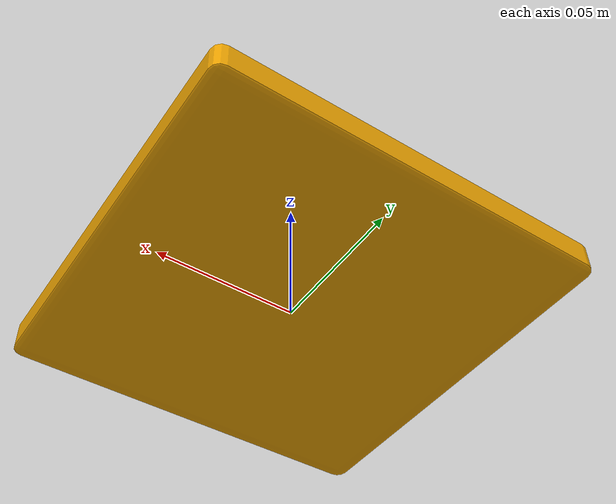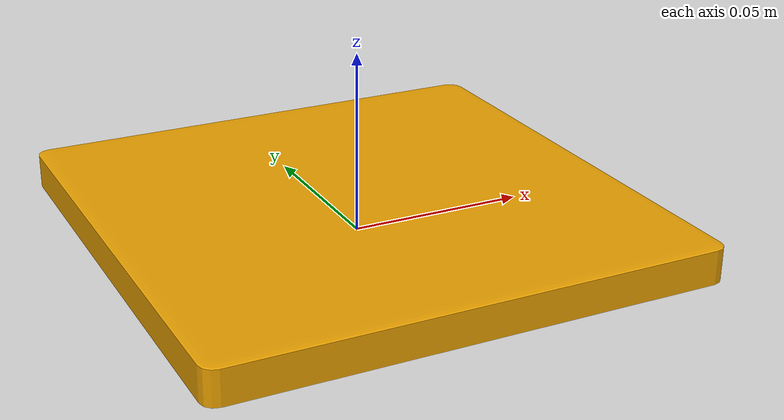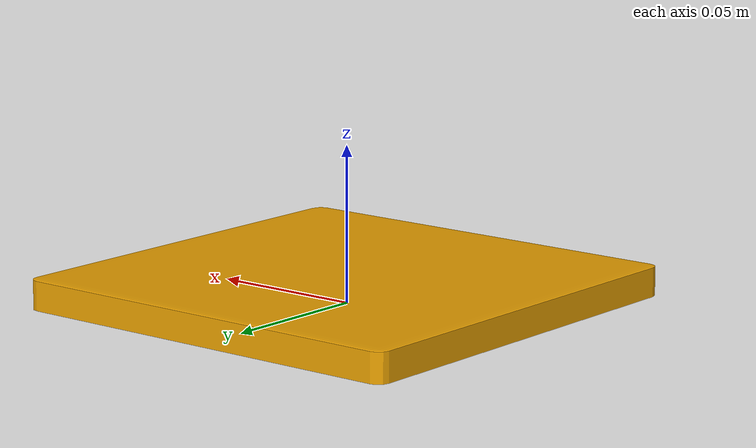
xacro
<robot name="cam_bot" xmlns:xacro="http://www.ros.org/wiki/xacro">

        <xacro:include filename="$(find rover_description)/urdf/birds_eye_cam.xacro" />
        <xacro:include filename="$(find rover_description)/urdf/birds_eye_cam.gazebo" />

</robot>

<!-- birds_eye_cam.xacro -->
<robot name="cam_bot" xmlns:xacro="http://ros.org/wiki/xacro">

<link name="base_link">
<inertial>
        <mass value="1.584994"/>
        <origin xyz="0.0 0.0 0.0"/>
        <inertia
          ixx="0.01042" ixy="0.001177" ixz="-0.0008871"
          iyy="0.01045" iyz="0.0002226"
          izz="0.01817"/>
      </inertial>
    <visual>
        <geometry>
          <mesh filename="package://rover_description/meshes/dae_markers/test_modified.dae"/>
        </geometry>
      </visual>
      <collision>
        <geometry>
          <mesh filename="package://rover_description/meshes/dae_markers/test_modified.dae" />
        </geometry>
      </collision>
</link>

<joint name="camera_to_base" type="fixed">
      <parent link="base_link" />
      <child link = "camera_link" />
      <origin xyz="0.0 0.0 3.0" rpy="3.142 0.0 0.0" />
      <axis xyz="0 0 1" />
      <limit lower="-3.142" upper="3.142" effort="150.0" velocity="1.5"/>
</joint>

<link name="camera_link">
</link>

</robot>
